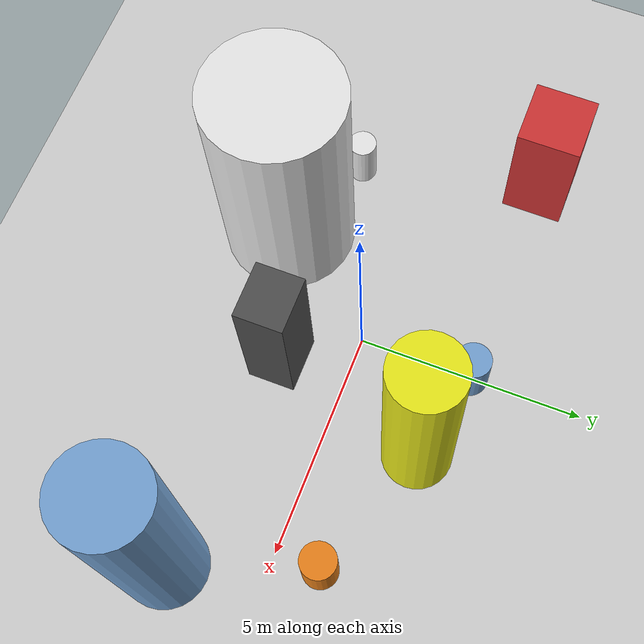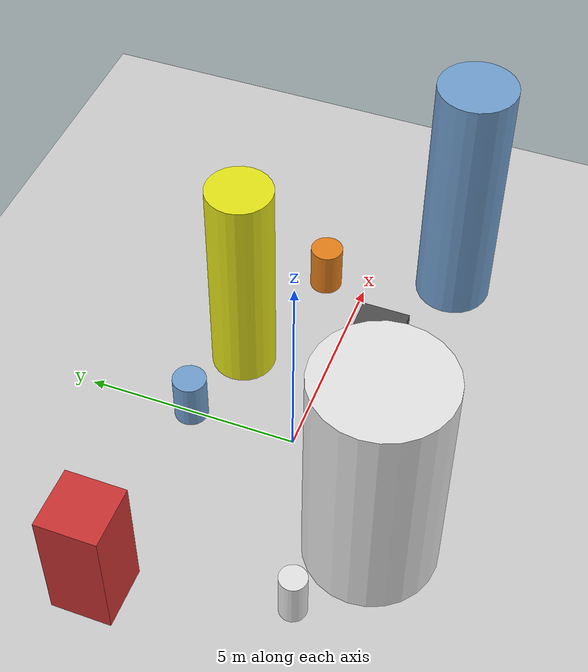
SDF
<?xml version='1.0'?>
<sdf version='1.6'>
  <world name='routeA_rl_v1__support_expansion__rl_train__mixed_3d_low_density_route__000132'>
    <!-- Sun light -->
    <light name='sun' type='directional'>
      <cast_shadows>1</cast_shadows>
      <pose>0 0 10 0 0 0</pose>
      <diffuse>0.8 0.8 0.8 1</diffuse>
      <specular>0.2 0.2 0.2 1</specular>
      <attenuation>
        <range>1000</range>
        <constant>0.9</constant>
        <linear>0.01</linear>
        <quadratic>0.001</quadratic>
      </attenuation>
      <direction>-0.5 0.1 -0.9</direction>
    </light>

    <!-- Ground plane -->
    <model name='ground_plane'>
      <static>1</static>
      <link name='link'>
        <collision name='collision'>
          <geometry>
            <plane>
              <normal>0 0 1</normal>
              <size>100 100</size>
            </plane>
          </geometry>
          <surface>
            <contact>
              <collide_bitmask>65535</collide_bitmask>
              <ode/>
            </contact>
            <friction>
              <ode>
                <mu>100</mu>
                <mu2>50</mu2>
              </ode>
              <torsional><ode/></torsional>
            </friction>
            <bounce/>
          </surface>
          <max_contacts>10</max_contacts>
        </collision>
        <visual name='visual'>
          <cast_shadows>0</cast_shadows>
          <geometry>
            <plane>
              <normal>0 0 1</normal>
              <size>100 100</size>
            </plane>
          </geometry>
          <material>
            <script>
              <uri>file://media/materials/scripts/gazebo.material</uri>
              <n>Gazebo/Grey</n>
            </script>
          </material>
        </visual>
      </link>
    </model>

    <!-- Environment -->
    <magnetic_field>6e-06 2.3e-05 -4.2e-05</magnetic_field>
    <atmosphere type='adiabatic'/>
    <physics name='default_physics' default='0' type='ode'>
      <gravity>0 0 -9.8</gravity>
      <max_step_size>0.004</max_step_size>
      <real_time_factor>1</real_time_factor>
      <real_time_update_rate>250</real_time_update_rate>
    </physics>
    <scene>
      <ambient>0.4 0.4 0.4 1</ambient>
      <background>0.7 0.7 0.7 1</background>
      <shadows>1</shadows>
    </scene>
    <wind/>
    <spherical_coordinates>
      <surface_model>EARTH_WGS84</surface_model>
      <latitude_deg>0</latitude_deg>
      <longitude_deg>0</longitude_deg>
      <elevation>0</elevation>
      <heading_deg>0</heading_deg>
    </spherical_coordinates>

    <!-- ============ OBSTACLES (8) ============ -->
    <model name='low_obs_0'>
      <static>1</static>
      <link name='link'>
        <visual name='visual'>
          <geometry>
            <cylinder>
              <radius>0.3068</radius>
              <length>1.2123</length>
            </cylinder>
          </geometry>
          <material>
            <script>
              <n>Gazebo/White</n>
              <uri>file://media/materials/scripts/gazebo.material</uri>
            </script>
            <ambient>0.9 0.9 0.9 1</ambient>
          </material>
        </visual>
        <collision name='collision'>
          <geometry>
            <cylinder>
              <radius>0.3068</radius>
              <length>1.2123</length>
            </cylinder>
          </geometry>
          <max_contacts>10</max_contacts>
          <surface>
            <contact><ode/></contact>
            <bounce/>
            <friction>
              <ode><mu>1</mu><mu2>1</mu2></ode>
              <torsional><ode/></torsional>
            </friction>
          </surface>
        </collision>
      </link>
      <pose>-4.0000 -1.5000 0.6061 0 0 0.0000</pose>
    </model>

    <model name='low_obs_1'>
      <static>1</static>
      <link name='link'>
        <visual name='visual'>
          <geometry>
            <cylinder>
              <radius>0.3917</radius>
              <length>1.1957</length>
            </cylinder>
          </geometry>
          <material>
            <script>
              <n>Gazebo/Blue</n>
              <uri>file://media/materials/scripts/gazebo.material</uri>
            </script>
            <ambient>0.447 0.624 0.812 1</ambient>
          </material>
        </visual>
        <collision name='collision'>
          <geometry>
            <cylinder>
              <radius>0.3917</radius>
              <length>1.1957</length>
            </cylinder>
          </geometry>
          <max_contacts>10</max_contacts>
          <surface>
            <contact><ode/></contact>
            <bounce/>
            <friction>
              <ode><mu>1</mu><mu2>1</mu2></ode>
              <torsional><ode/></torsional>
            </friction>
          </surface>
        </collision>
      </link>
      <pose>0.0000 2.5000 0.5979 0 0 0.0000</pose>
    </model>

    <model name='low_obs_2'>
      <static>1</static>
      <link name='link'>
        <visual name='visual'>
          <geometry>
            <cylinder>
              <radius>0.3892</radius>
              <length>1.1947</length>
            </cylinder>
          </geometry>
          <material>
            <script>
              <n>Gazebo/Orange</n>
              <uri>file://media/materials/scripts/gazebo.material</uri>
            </script>
            <ambient>0.9 0.5 0.1 1</ambient>
          </material>
        </visual>
        <collision name='collision'>
          <geometry>
            <cylinder>
              <radius>0.3892</radius>
              <length>1.1947</length>
            </cylinder>
          </geometry>
          <max_contacts>10</max_contacts>
          <surface>
            <contact><ode/></contact>
            <bounce/>
            <friction>
              <ode><mu>1</mu><mu2>1</mu2></ode>
              <torsional><ode/></torsional>
            </friction>
          </surface>
        </collision>
      </link>
      <pose>5.0000 1.0000 0.5974 0 0 0.0000</pose>
    </model>

    <model name='tall_obs_0'>
      <static>1</static>
      <link name='link'>
        <visual name='visual'>
          <geometry>
            <cylinder>
              <radius>1.4677</radius>
              <length>5.5514</length>
            </cylinder>
          </geometry>
          <material>
            <script>
              <n>Gazebo/White</n>
              <uri>file://media/materials/scripts/gazebo.material</uri>
            </script>
            <ambient>0.9 0.9 0.9 1</ambient>
          </material>
        </visual>
        <collision name='collision'>
          <geometry>
            <cylinder>
              <radius>1.4677</radius>
              <length>5.5514</length>
            </cylinder>
          </geometry>
          <max_contacts>10</max_contacts>
          <surface>
            <contact><ode/></contact>
            <bounce/>
            <friction>
              <ode><mu>1</mu><mu2>1</mu2></ode>
              <torsional><ode/></torsional>
            </friction>
          </surface>
        </collision>
      </link>
      <pose>-2.0000 -2.5000 2.7757 0 0 0.0000</pose>
    </model>

    <model name='tall_obs_1'>
      <static>1</static>
      <link name='link'>
        <visual name='visual'>
          <geometry>
            <cylinder>
              <radius>0.7595</radius>
              <length>5.3499</length>
            </cylinder>
          </geometry>
          <material>
            <script>
              <n>Gazebo/Yellow</n>
              <uri>file://media/materials/scripts/gazebo.material</uri>
            </script>
            <ambient>0.9 0.9 0.1 1</ambient>
          </material>
        </visual>
        <collision name='collision'>
          <geometry>
            <cylinder>
              <radius>0.7595</radius>
              <length>5.3499</length>
            </cylinder>
          </geometry>
          <max_contacts>10</max_contacts>
          <surface>
            <contact><ode/></contact>
            <bounce/>
            <friction>
              <ode><mu>1</mu><mu2>1</mu2></ode>
              <torsional><ode/></torsional>
            </friction>
          </surface>
        </collision>
      </link>
      <pose>2.0000 2.0000 2.6749 0 0 0.0000</pose>
    </model>

    <model name='tall_obs_2'>
      <static>1</static>
      <link name='link'>
        <visual name='visual'>
          <geometry>
            <cylinder>
              <radius>0.9110</radius>
              <length>6.2461</length>
            </cylinder>
          </geometry>
          <material>
            <script>
              <n>Gazebo/Blue</n>
              <uri>file://media/materials/scripts/gazebo.material</uri>
            </script>
            <ambient>0.447 0.624 0.812 1</ambient>
          </material>
        </visual>
        <collision name='collision'>
          <geometry>
            <cylinder>
              <radius>0.9110</radius>
              <length>6.2461</length>
            </cylinder>
          </geometry>
          <max_contacts>10</max_contacts>
          <surface>
            <contact><ode/></contact>
            <bounce/>
            <friction>
              <ode><mu>1</mu><mu2>1</mu2></ode>
              <torsional><ode/></torsional>
            </friction>
          </surface>
        </collision>
      </link>
      <pose>6.0000 -2.0000 3.1230 0 0 0.0000</pose>
    </model>

    <model name='med_obs_0'>
      <static>1</static>
      <link name='link'>
        <visual name='visual'>
          <geometry>
            <box>
              <size>1.3687 1.3566 2.9559</size>
            </box>
          </geometry>
          <material>
            <script>
              <n>Gazebo/Red</n>
              <uri>file://media/materials/scripts/gazebo.material</uri>
            </script>
            <ambient>0.8 0.2 0.2 1</ambient>
          </material>
        </visual>
        <collision name='collision'>
          <geometry>
            <box>
              <size>1.3687 1.3566 2.9559</size>
            </box>
          </geometry>
          <max_contacts>10</max_contacts>
          <surface>
            <contact><ode/></contact>
            <bounce/>
            <friction>
              <ode><mu>1</mu><mu2>1</mu2></ode>
              <torsional><ode/></torsional>
            </friction>
          </surface>
        </collision>
      </link>
      <pose>-5.0000 2.5000 1.4779 0 0 0.0000</pose>
    </model>

    <model name='med_obs_1'>
      <static>1</static>
      <link name='link'>
        <visual name='visual'>
          <geometry>
            <box>
              <size>1.1948 1.0393 3.4230</size>
            </box>
          </geometry>
          <material>
            <script>
              <n>Gazebo/DarkGrey</n>
              <uri>file://media/materials/scripts/gazebo.material</uri>
            </script>
            <ambient>0.3 0.3 0.3 1</ambient>
          </material>
        </visual>
        <collision name='collision'>
          <geometry>
            <box>
              <size>1.1948 1.0393 3.4230</size>
            </box>
          </geometry>
          <max_contacts>10</max_contacts>
          <surface>
            <contact><ode/></contact>
            <bounce/>
            <friction>
              <ode><mu>1</mu><mu2>1</mu2></ode>
              <torsional><ode/></torsional>
            </friction>
          </surface>
        </collision>
      </link>
      <pose>1.0000 -1.5000 1.7115 0 0 0.0000</pose>
    </model>

    <!-- GUI camera -->
    <gui fullscreen='0'>
      <camera name='user_camera'>
        <pose>-15 0 18 0 0.85 0.15</pose>
        <view_controller>orbit</view_controller>
        <projection_type>perspective</projection_type>
      </camera>
    </gui>
  </world>
</sdf>
